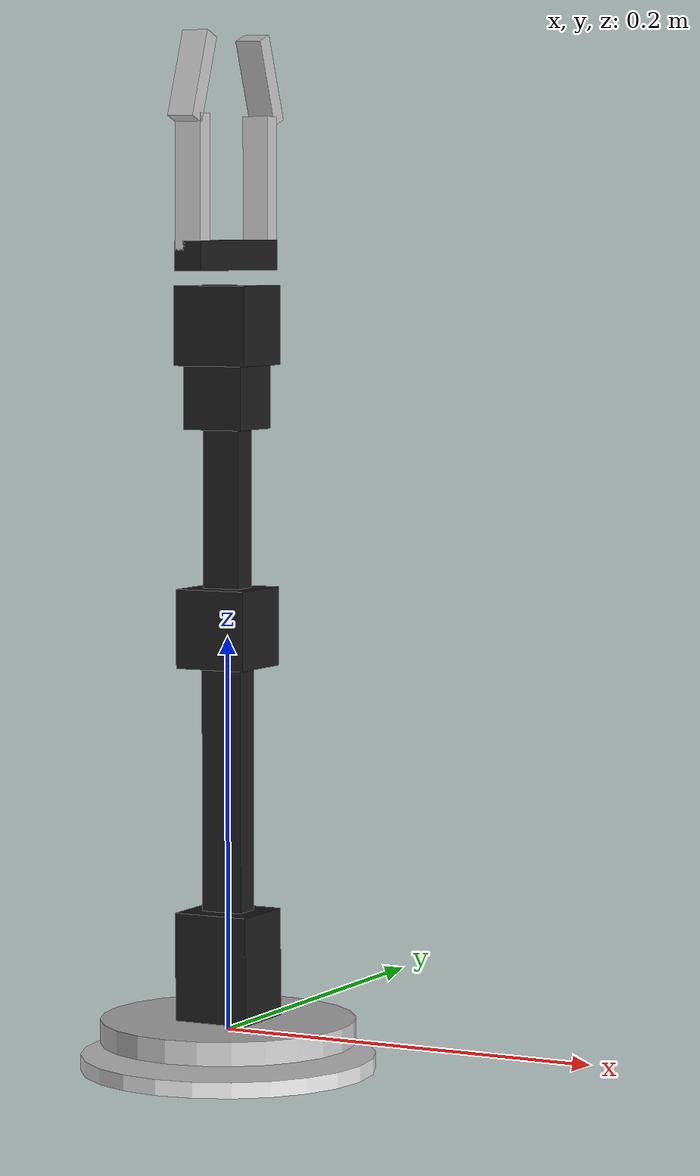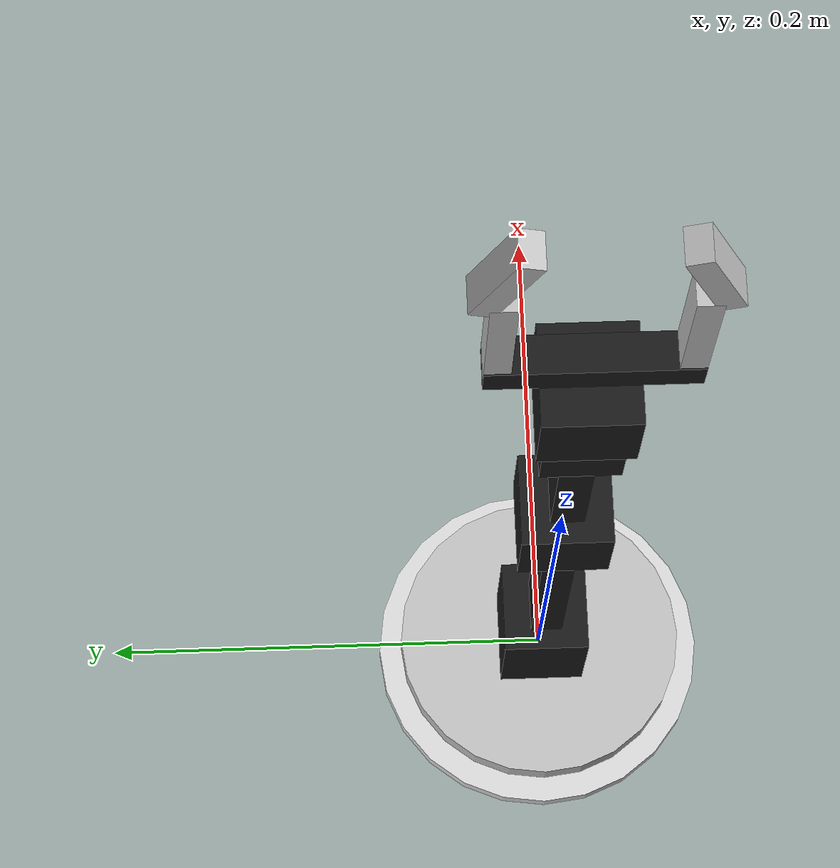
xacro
<?xml version="1.0"?>
<robot xmlns:xacro="http://www.ros.org/wiki/xacro" name="robot">
    <xacro:arg name="initial_positions_file" default="initial_positions.yaml" />

    <!-- Import robot urdf file -->
    <xacro:include filename="$(find lerobot_description)/urdf/robot.urdf.xacro" />

    <!-- Import control_xacro -->
    <xacro:include filename="robot.ros2_control.xacro" />

    <xacro:robot_ros2_control name="FakeSystem" initial_positions_file="$(arg initial_positions_file)"/>

</robot>

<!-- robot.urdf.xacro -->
<robot name="robot" xmlns:xacro="http://www.ros.org/wiki/xacro">

  <!--              全局尺寸参数定义                  -->

  <!-- 底座 -->
  <xacro:property name="base_lower_radius"   value="0.075"/>
  <xacro:property name="base_lower_length"   value="0.008"/>
  <xacro:property name="base_upper_radius"   value="0.065"/>
  <xacro:property name="base_upper_length"   value="0.012"/>

  <!-- 肩部舵机 -->
  <xacro:property name="shoulder_size_x"     value="0.04"/>
  <xacro:property name="shoulder_size_y"     value="0.038"/>
  <xacro:property name="shoulder_size_z"     value="0.055"/>

  <!-- 大臂 -->
  <xacro:property name="upper_arm_x"         value="0.022"/>
  <xacro:property name="upper_arm_y"         value="0.014"/>
  <xacro:property name="upper_arm_z"         value="0.130"/>
  <xacro:property name="elbow_servo_size"    value="0.038"/>
  <xacro:property name="elbow_servo_z"       value="0.040"/>

  <!-- 前臂 -->
  <xacro:property name="forearm_x"           value="0.020"/>
  <xacro:property name="forearm_y"           value="0.014"/>
  <xacro:property name="forearm_z"           value="0.090"/>
  <xacro:property name="wrist_servo_size"    value="0.032"/>

  <!-- 夹爪底座 -->
  <xacro:property name="gripper_body_x"      value="0.040"/>
  <xacro:property name="gripper_body_y"      value="0.038"/>
  <xacro:property name="gripper_body_z"      value="0.040"/>
  <xacro:property name="gripper_bar_x"       value="0.015"/>
  <xacro:property name="gripper_bar_y"       value="0.080"/>
  <xacro:property name="gripper_bar_z"       value="0.015"/>

  <!-- 指爪 -->
  <xacro:property name="finger_seg1_x"       value="0.070"/>
  <xacro:property name="finger_seg1_y"       value="0.010"/>
  <xacro:property name="finger_seg1_z"       value="0.014"/>
  <xacro:property name="finger_seg2_x"       value="0.045"/>
  <xacro:property name="finger_seg2_y"       value="0.010"/>
  <xacro:property name="finger_seg2_z"       value="0.014"/>
  <xacro:property name="finger_seg2_rpy_z"   value="0.35"/>   <!-- 弧形弯曲角度(rad) -->
  <xacro:property name="finger_spread_y"     value="0.035"/>  <!-- 指爪Y轴偏移 -->
  <xacro:property name="finger_origin_x"     value="0.055"/>  <!-- 指爪关节X位置 -->
  <xacro:property name="finger_limit"        value="0.6"/>    <!-- 关节限位(rad) -->

  <!-- π（直接使用xacro内置的 ${pi}，无需重复定义） -->

  <!--                材质定义                       -->
  <material name="dark_gray"> <color rgba="0.2  0.2  0.2  1.0"/> </material>
  <material name="silver">    <color rgba="0.75 0.75 0.75 1.0"/> </material>
  <material name="black">     <color rgba="0.1  0.1  0.1  1.0"/> </material>
  <material name="light_gray"><color rgba="0.85 0.85 0.85 1.0"/> </material>

  <!--  宏：指爪 link（左右指共用，通过参数区分镜像）  -->
  <!--  side: left / right                         -->
  <!--  sign: +1(左) / -1(右)，控制弧形弯曲方向      -->
  <xacro:macro name="finger_link" params="side sign">
    <link name="gripper_${side}_finger_link">
      <!-- 近端直段 -->
      <visual>
        <geometry>
          <box size="${finger_seg1_x} ${finger_seg1_y} ${finger_seg1_z}"/>
        </geometry>
        <origin xyz="${finger_seg1_x/2} 0 0"/>
        <material name="silver"/>
      </visual>
      <collision>
        <geometry>
          <box size="${finger_seg1_x} ${finger_seg1_y} ${finger_seg1_z}"/>
        </geometry>
        <origin xyz="${finger_seg1_x/2} 0 0"/>
      </collision>
      <!-- 远端弧形段（绕Z轴倾斜模拟弧形） -->
      <visual>
        <geometry>
          <box size="${finger_seg2_x} ${finger_seg2_y} ${finger_seg2_z}"/>
        </geometry>
        <origin xyz="${finger_seg1_x + finger_seg2_x*0.4} 0 0"
                rpy="0 0 ${sign * finger_seg2_rpy_z}"/>
        <material name="silver"/>
      </visual>
      <collision>
        <geometry>
          <box size="${finger_seg2_x} ${finger_seg2_y} ${finger_seg2_z}"/>
        </geometry>
        <origin xyz="${finger_seg1_x + finger_seg2_x*0.4} 0 0"
                rpy="0 0 ${sign * finger_seg2_rpy_z}"/>
      </collision>
    </link>
  </xacro:macro>

  <!--  宏：指爪 joint                              -->
  <!--  side:       left / right                   -->
  <!--  y_offset:   关节Y轴偏移（左负右正）          -->
  <!--  lower/upper: 关节限位                       -->
  <!--  mimic_mul:  mimic乘数（右指为-1）            -->
  <xacro:macro name="finger_joint" params="side y_offset lower upper mimic_mul">
    <joint name="gripper_${side}_finger_joint" type="revolute">
      <parent link="gripper_base_link"/>
      <child  link="gripper_${side}_finger_link"/>
      <origin xyz="${finger_origin_x} ${y_offset} 0" rpy="0 0 0"/>
      <axis xyz="0 0 1"/>
      <xacro:if value="${side == 'right'}">
        <mimic joint="gripper_left_finger_joint"
               multiplier="${mimic_mul}" offset="0.0"/>
      </xacro:if>
      <limit lower="${lower}" upper="${upper}"
             effort="10" velocity="1.0"/>
    </joint>
  </xacro:macro>

  <!--          机器人本体结构                        -->

  <!-- ── 底座 ── -->
  <link name="base_link">
    <!-- 下层亚克力圆盘 -->
    <visual>
      <geometry>
        <cylinder radius="${base_lower_radius}" length="${base_lower_length}"/>
      </geometry>
      <origin xyz="0 0 -0.016"/>
      <material name="light_gray"/>
    </visual>
    <collision>
      <geometry>
        <cylinder radius="${base_lower_radius}" length="${base_lower_length}"/>
      </geometry>
      <origin xyz="0 0 -0.016"/>
    </collision>
    <!-- 上层金属转台 -->
    <visual>
      <geometry>
        <cylinder radius="${base_upper_radius}" length="${base_upper_length}"/>
      </geometry>
      <origin xyz="0 0 0"/>
      <material name="silver"/>
    </visual>
    <collision>
      <geometry>
        <cylinder radius="${base_upper_radius}" length="${base_upper_length}"/>
      </geometry>
      <origin xyz="0 0 0"/>
    </collision>
  </link>

  <!-- joint1：底座绕Z轴旋转（水平回转）±180° -->
  <joint name="joint1" type="revolute">
    <parent link="base_link"/>
    <child  link="shoulder_link"/>
    <origin xyz="0 0 0.006"/>
    <axis xyz="0 0 1"/>
    <limit lower="${-pi}" upper="${pi}" effort="15" velocity="1.0"/>
  </joint>

  <!-- ── 肩部舵机座 ── -->
  <link name="shoulder_link">
    <visual>
      <geometry>
        <box size="${shoulder_size_x} ${shoulder_size_y} ${shoulder_size_z}"/>
      </geometry>
      <origin xyz="0 0 ${shoulder_size_z/2}"/>
      <material name="black"/>
    </visual>
    <collision>
      <geometry>
        <box size="${shoulder_size_x} ${shoulder_size_y} ${shoulder_size_z}"/>
      </geometry>
      <origin xyz="0 0 ${shoulder_size_z/2}"/>
    </collision>
  </link>

  <!-- joint2：大臂俯仰（绕Y轴）±90° -->
  <joint name="joint2" type="revolute">
    <parent link="shoulder_link"/>
    <child  link="upper_arm_link"/>
    <origin xyz="0 0 0.054"/>
    <axis xyz="0 1 0"/>
    <limit lower="${-pi/2}" upper="${pi/2}" effort="15" velocity="1.0"/>
  </joint>

  <!-- ── 大臂 ── -->
  <link name="upper_arm_link">
    <!-- 主杆 -->
    <visual>
      <geometry>
        <box size="${upper_arm_x} ${upper_arm_y} ${upper_arm_z}"/>
      </geometry>
      <origin xyz="0 0 ${upper_arm_z/2}"/>
      <material name="black"/>
    </visual>
    <collision>
      <geometry>
        <box size="${upper_arm_x} ${upper_arm_y} ${upper_arm_z}"/>
      </geometry>
      <origin xyz="0 0 ${upper_arm_z/2}"/>
    </collision>
    <!-- 肘部舵机 -->
    <visual>
      <geometry>
        <box size="${elbow_servo_size} ${elbow_servo_size} ${elbow_servo_z}"/>
      </geometry>
      <origin xyz="0 0 0.145"/>
      <material name="black"/>
    </visual>
    <collision>
      <geometry>
        <box size="${elbow_servo_size} ${elbow_servo_size} ${elbow_servo_z}"/>
      </geometry>
      <origin xyz="0 0 0.145"/>
    </collision>
  </link>

  <!-- joint3：前臂俯仰（绕Y轴）±90° -->
  <joint name="joint3" type="revolute">
    <parent link="upper_arm_link"/>
    <child  link="forearm_link"/>
    <origin xyz="0 0 0.165"/>
    <axis xyz="0 1 0"/>
    <limit lower="${-pi/2}" upper="${pi/2}" effort="10" velocity="1.0"/>
  </joint>

  <!-- ── 前臂 ── -->
  <link name="forearm_link">
    <!-- 主杆 -->
    <visual>
      <geometry>
        <box size="${forearm_x} ${forearm_y} ${forearm_z}"/>
      </geometry>
      <origin xyz="0 0 ${forearm_z/2}"/>
      <material name="black"/>
    </visual>
    <collision>
      <geometry>
        <box size="${forearm_x} ${forearm_y} ${forearm_z}"/>
      </geometry>
      <origin xyz="0 0 ${forearm_z/2}"/>
    </collision>
    <!-- 腕部舵机座 -->
    <visual>
      <geometry>
        <box size="${wrist_servo_size} ${wrist_servo_size} ${wrist_servo_size}"/>
      </geometry>
      <origin xyz="0 0 0.096"/>
      <material name="black"/>
    </visual>
    <collision>
      <geometry>
        <box size="${wrist_servo_size} ${wrist_servo_size} ${wrist_servo_size}"/>
      </geometry>
      <origin xyz="0 0 0.096"/>
    </collision>
  </link>

<!-- joint4：腕部，给一个极小范围让MoveIt识别为可动关节 -->
<joint name="joint4" type="revolute">
  <parent link="forearm_link"/>
  <child link="gripper_base_link"/>
  <origin xyz="0 0 0.112" rpy="0 -1.5708 0"/>
  <axis xyz="0 1 0"/>
  <limit lower="-1.5708" upper="1.5708" effort="8" velocity="1.0"/>
</joint>

  <!-- ── 夹爪底座 ── -->
  <link name="gripper_base_link">
    <!-- 舵机壳体 -->
    <visual>
      <geometry>
        <box size="${gripper_body_x} ${gripper_body_y} ${gripper_body_z}"/>
      </geometry>
      <origin xyz="0.020 0 0"/>
      <material name="black"/>
    </visual>
    <collision>
      <geometry>
        <box size="${gripper_body_x} ${gripper_body_y} ${gripper_body_z}"/>
      </geometry>
      <origin xyz="0.020 0 0"/>
    </collision>
    <!-- 横向安装板 -->
    <visual>
      <geometry>
        <box size="${gripper_bar_x} ${gripper_bar_y} ${gripper_bar_z}"/>
      </geometry>
      <origin xyz="0.055 0 0"/>
      <material name="black"/>
    </visual>
    <collision>
      <geometry>
        <box size="${gripper_bar_x} ${gripper_bar_y} ${gripper_bar_z}"/>
      </geometry>
      <origin xyz="0.055 0 0"/>
    </collision>
  </link>

  <!-- ── 左指爪（主动）：sign=+1 弧形向上弯 ── -->
  <xacro:finger_link side="left"  sign="1"/>
  <xacro:finger_joint side="left"
                      y_offset="${-finger_spread_y}"
                      lower="${-finger_limit}" upper="0.0"
                      mimic_mul="0"/>

  <!-- ── 右指爪（从动 mimic）：sign=-1 弧形向下弯 ── -->
  <xacro:finger_link side="right" sign="-1"/>
  <xacro:finger_joint side="right"
                      y_offset="${finger_spread_y}"
                      lower="0.0" upper="${finger_limit}"
                      mimic_mul="-1.0"/>

  <!-- ── TCP 工具点 ── -->
  <joint name="gripper_tcp_joint" type="fixed">
    <parent link="gripper_base_link"/>
    <child  link="tcp_link"/>
    <origin xyz="0.110 0 0"/>
  </joint>
  <link name="tcp_link"/>

</robot>
